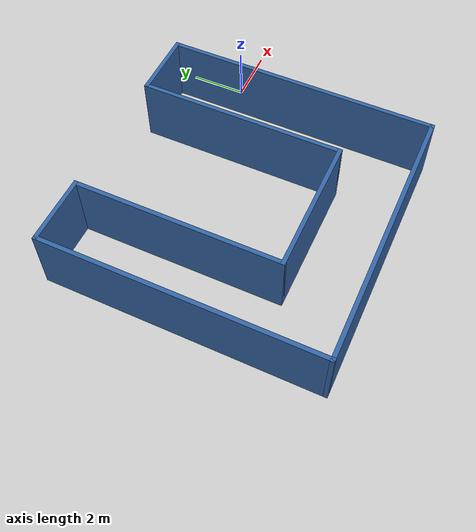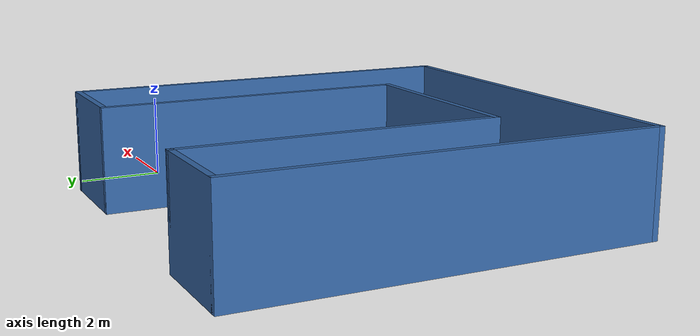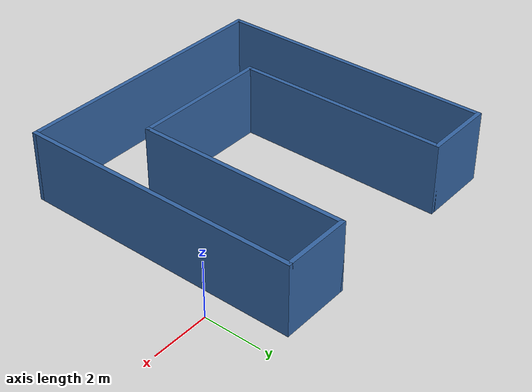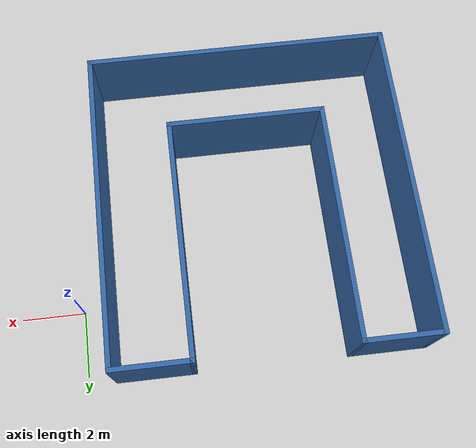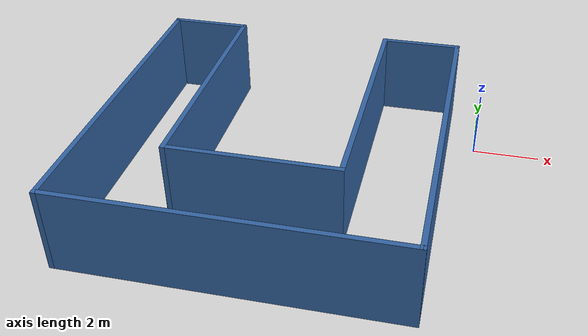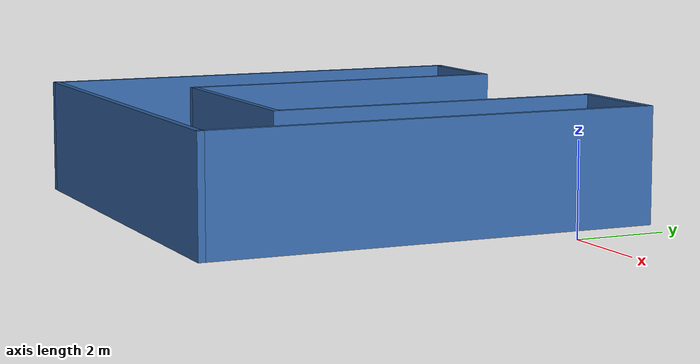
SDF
<?xml version='1.0'?>
<sdf version='1.7'>
  <model name='mybuilding'>
    <pose>-5.27541 -2.72952 0 0 -0 0</pose>
    <link name='Wall_26'>
      <collision name='Wall_26_Collision'>
        <geometry>
          <box>
            <size>10 0.15 2.5</size>
          </box>
        </geometry>
        <pose>0 0 1.25 0 -0 0</pose>
      </collision>
      <visual name='Wall_26_Visual'>
        <pose>0 0 1.25 0 -0 0</pose>
        <geometry>
          <box>
            <size>10 0.15 2.5</size>
          </box>
        </geometry>
        <material>
          <script>
            <uri>file://media/materials/scripts/gazebo.material</uri>
            <name>Gazebo/Grey</name>
          </script>
          <ambient>0.203922 0.396078 0.643137 1</ambient>
        </material>
        <meta>
          <layer>0</layer>
        </meta>
      </visual>
      <pose>-5.20041 -0 0 0 -0 1.5708</pose>
    </link>
    <link name='Wall_27'>
      <collision name='Wall_27_Collision'>
        <geometry>
          <box>
            <size>2.5 0.15 2.5</size>
          </box>
        </geometry>
        <pose>0 0 1.25 0 -0 0</pose>
      </collision>
      <visual name='Wall_27_Visual'>
        <pose>0 0 1.25 0 -0 0</pose>
        <geometry>
          <box>
            <size>2.5 0.15 2.5</size>
          </box>
        </geometry>
        <material>
          <script>
            <uri>file://media/materials/scripts/gazebo.material</uri>
            <name>Gazebo/Grey</name>
          </script>
          <ambient>0.203922 0.396078 0.643137 1</ambient>
        </material>
        <meta>
          <layer>0</layer>
        </meta>
      </visual>
      <pose>-4.02541 4.925 0 0 -0 0</pose>
    </link>
    <link name='Wall_28'>
      <collision name='Wall_28_Collision'>
        <geometry>
          <box>
            <size>7.5 0.15 2.5</size>
          </box>
        </geometry>
        <pose>0 0 1.25 0 -0 0</pose>
      </collision>
      <visual name='Wall_28_Visual'>
        <pose>0 0 1.25 0 -0 0</pose>
        <geometry>
          <box>
            <size>7.5 0.15 2.5</size>
          </box>
        </geometry>
        <material>
          <script>
            <uri>file://media/materials/scripts/gazebo.material</uri>
            <name>Gazebo/Grey</name>
          </script>
          <ambient>0.203922 0.396078 0.643137 1</ambient>
        </material>
        <meta>
          <layer>0</layer>
        </meta>
      </visual>
      <pose>-2.85041 1.25 0 0 -0 -1.5708</pose>
    </link>
    <link name='Wall_29'>
      <collision name='Wall_29_Collision'>
        <geometry>
          <box>
            <size>5 0.15 2.5</size>
          </box>
        </geometry>
        <pose>0 0 1.25 0 -0 0</pose>
      </collision>
      <visual name='Wall_29_Visual'>
        <pose>0 0 1.25 0 -0 0</pose>
        <geometry>
          <box>
            <size>5 0.15 2.5</size>
          </box>
        </geometry>
        <material>
          <script>
            <uri>file://media/materials/scripts/gazebo.material</uri>
            <name>Gazebo/Grey</name>
          </script>
          <ambient>0.203922 0.396078 0.643137 1</ambient>
        </material>
        <meta>
          <layer>0</layer>
        </meta>
      </visual>
      <pose>-0.425409 -2.425 0 0 -0 0</pose>
    </link>
    <link name='Wall_30'>
      <collision name='Wall_30_Collision'>
        <geometry>
          <box>
            <size>7.5 0.15 2.5</size>
          </box>
        </geometry>
        <pose>0 0 1.25 0 -0 0</pose>
      </collision>
      <visual name='Wall_30_Visual'>
        <pose>0 0 1.25 0 -0 0</pose>
        <geometry>
          <box>
            <size>7.5 0.15 2.5</size>
          </box>
        </geometry>
        <material>
          <script>
            <uri>file://media/materials/scripts/gazebo.material</uri>
            <name>Gazebo/Grey</name>
          </script>
          <ambient>0.203922 0.396078 0.643137 1</ambient>
        </material>
        <meta>
          <layer>0</layer>
        </meta>
      </visual>
      <pose>1.99959 1.25 0 0 -0 1.5708</pose>
    </link>
    <link name='Wall_31'>
      <collision name='Wall_31_Collision'>
        <geometry>
          <box>
            <size>2.5 0.15 2.5</size>
          </box>
        </geometry>
        <pose>0 0 1.25 0 -0 0</pose>
      </collision>
      <visual name='Wall_31_Visual'>
        <pose>0 0 1.25 0 -0 0</pose>
        <geometry>
          <box>
            <size>2.5 0.15 2.5</size>
          </box>
        </geometry>
        <material>
          <script>
            <uri>file://media/materials/scripts/gazebo.material</uri>
            <name>Gazebo/Grey</name>
          </script>
          <ambient>0.203922 0.396078 0.643137 1</ambient>
        </material>
        <meta>
          <layer>0</layer>
        </meta>
      </visual>
      <pose>3.17459 4.925 0 0 -0 0</pose>
    </link>
    <link name='Wall_32'>
      <collision name='Wall_32_Collision'>
        <geometry>
          <box>
            <size>10 0.15 2.5</size>
          </box>
        </geometry>
        <pose>0 0 1.25 0 -0 0</pose>
      </collision>
      <visual name='Wall_32_Visual'>
        <pose>0 0 1.25 0 -0 0</pose>
        <geometry>
          <box>
            <size>10 0.15 2.5</size>
          </box>
        </geometry>
        <material>
          <script>
            <uri>file://media/materials/scripts/gazebo.material</uri>
            <name>Gazebo/Grey</name>
          </script>
          <ambient>0.203922 0.396078 0.643137 1</ambient>
        </material>
        <meta>
          <layer>0</layer>
        </meta>
      </visual>
      <pose>4.34959 -0 0 0 -0 -1.5708</pose>
    </link>
    <link name='Wall_33'>
      <collision name='Wall_33_Collision'>
        <geometry>
          <box>
            <size>9.7 0.15 2.5</size>
          </box>
        </geometry>
        <pose>0 0 1.25 0 -0 0</pose>
      </collision>
      <visual name='Wall_33_Visual'>
        <pose>0 0 1.25 0 -0 0</pose>
        <geometry>
          <box>
            <size>9.7 0.15 2.5</size>
          </box>
        </geometry>
        <material>
          <script>
            <uri>file://media/materials/scripts/gazebo.material</uri>
            <name>Gazebo/Grey</name>
          </script>
          <ambient>0.203922 0.396078 0.643137 1</ambient>
        </material>
        <meta>
          <layer>0</layer>
        </meta>
      </visual>
      <pose>-0.425409 -4.925 0 0 -0 3.14159</pose>
    </link>
    <static>1</static>
  </model>
</sdf>
